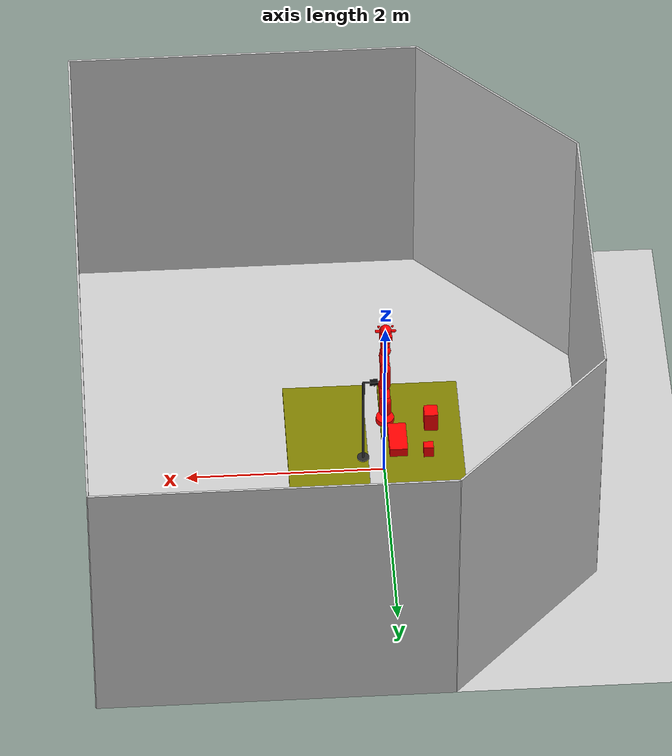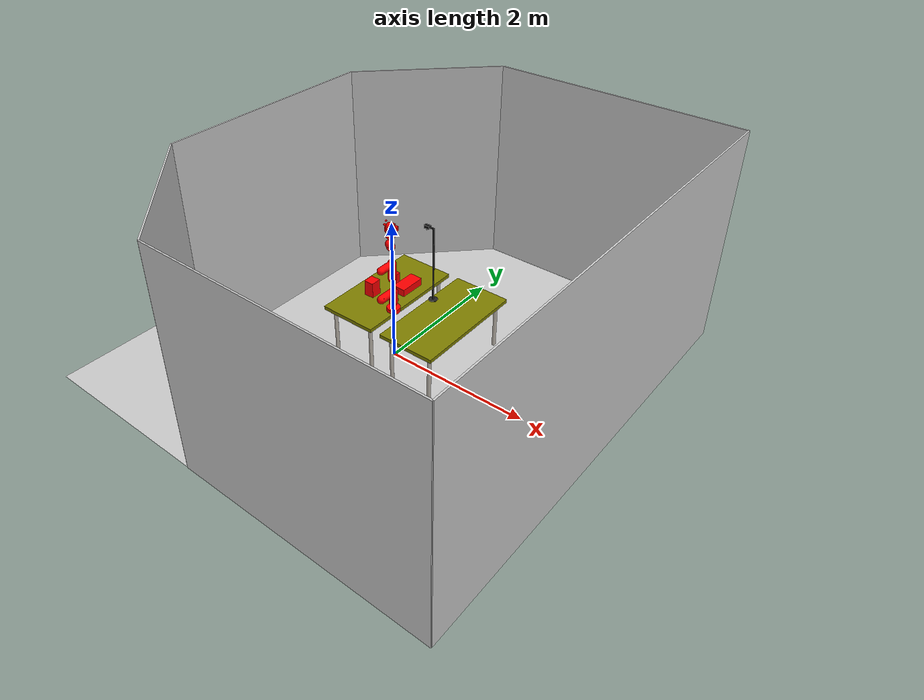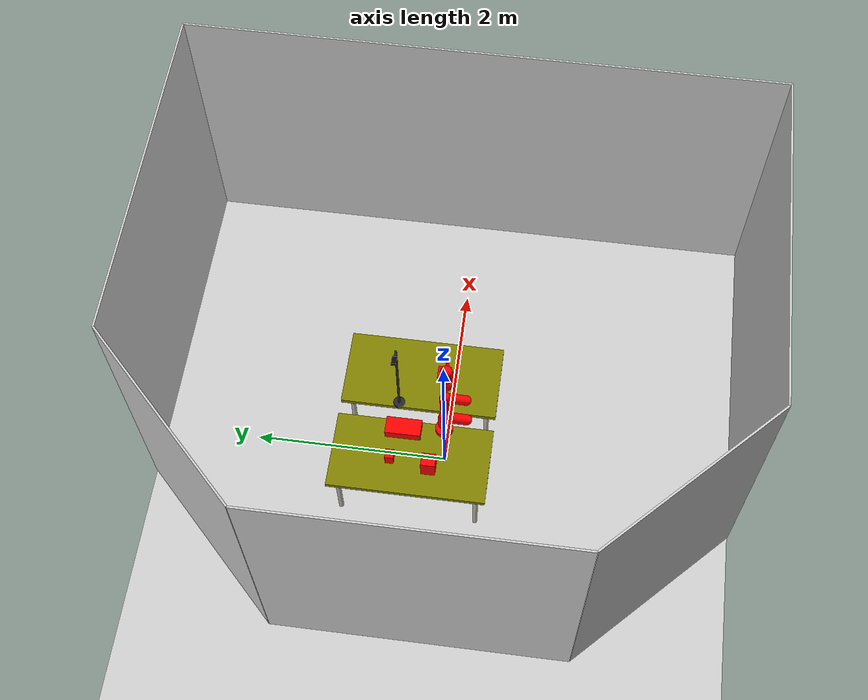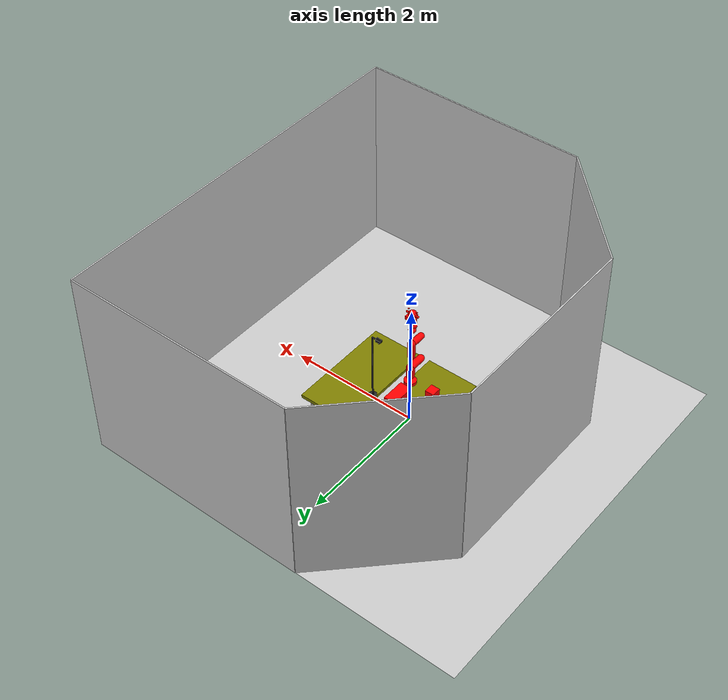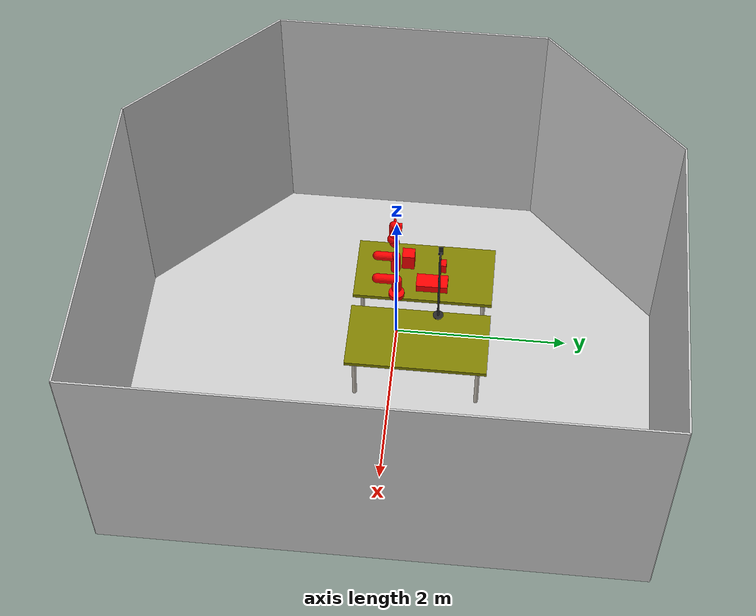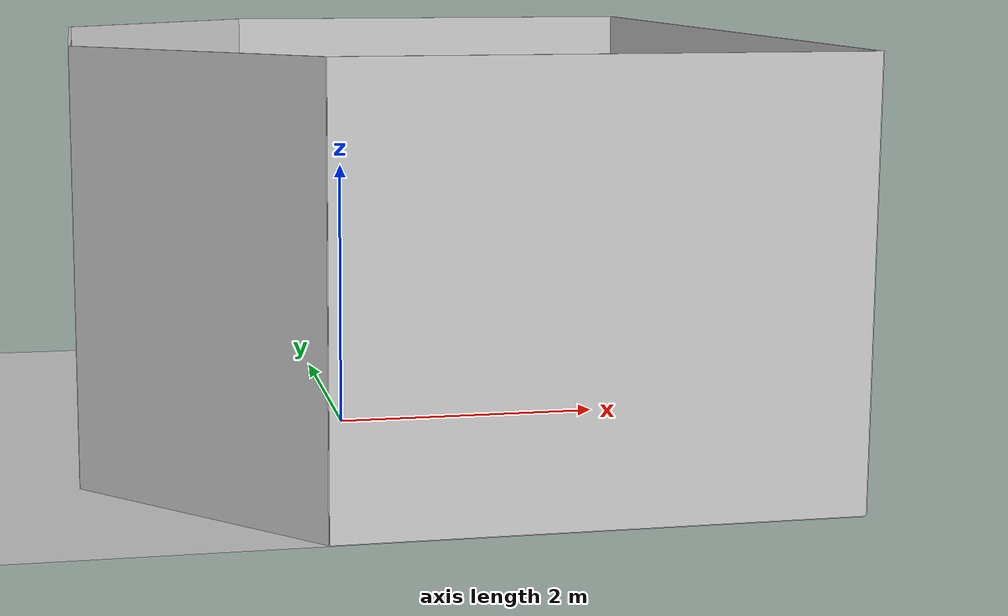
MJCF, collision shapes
<?xml version="1.0" encoding="utf-8"?>
<mujoco model="gen3_scene">
  <compiler angle="radian" autolimits="true"/>

  <default>
    <!-- Contact defaults (stable-ish) -->
    <geom friction="1.0 0.01 0.0001"
          solref="0.02 1"
          solimp="0.9 0.95 0.001"
          margin="0.001"
          condim="4"/>
    <!-- Give hinge joints some damping (arm won't jiggle) -->
    <joint damping="1.0" armature="0.01"/>
  </default>

  <option timestep="0.002"
          gravity="0 0 -9.81"
          integrator="RK4"
          impratio="20"
          density="1.2"
          viscosity="2e-05"
          cone="elliptic"/>

  <size njmax="5000" nconmax="5000"/>

  <visual>
    <global offwidth="1920" offheight="1080" fovy="59"/>
    <map znear="0.001"/>
  </visual>

  <asset>
    <!-- ================= Robosuite arena assets ================= -->
    <texture type="skybox" colorspace="auto" builtin="gradient"
             rgb1="0.9 0.9 1" rgb2="0.2 0.3 0.4" width="256" height="1536"/>
    <texture type="2d" colorspace="sRGB" name="texplane"
             file="textures/light-gray-floor-tile.png"/>
    <texture type="2d" colorspace="sRGB" name="tex-wood"
             file="textures/light_wood.png"/>
    <texture type="cube" colorspace="linear" name="tex-steel-brushed"
             file="textures/steel-brushed.png"/>
    <texture type="2d" colorspace="linear" name="tex-light-gray-plaster"
             file="textures/light-gray-plaster.png"/>
    <texture name="teddy_tex_png" type="2d"
             file="objects/teddy_bear/10607_teddy_bear_SG_v1_diffuse.png"/>
    <texture name="cardboard_tex" type="2d"
             file="objects/Cardboard box/6857659-light-brown-wallpaper.png"/>

    <!-- ================= Robot meshes/materials (INLINED) ================= -->
    <mesh name="base_link" content_type="model/stl" file="robot/base_link.stl"/>
    <mesh name="shoulder_link" content_type="model/stl" file="robot/shoulder_link.stl"/>
    <mesh name="half_arm_1_link" content_type="model/stl" file="robot/half_arm_1_link.stl"/>
    <mesh name="half_arm_2_link" content_type="model/stl" file="robot/half_arm_2_link.stl"/>
    <mesh name="forearm_link" content_type="model/stl" file="robot/forearm_link.stl"/>
    <mesh name="spherical_wrist_1_link" content_type="model/stl" file="robot/spherical_wrist_1_link.stl"/>
    <mesh name="spherical_wrist_2_link" content_type="model/stl" file="robot/spherical_wrist_2_link.stl"/>
    <mesh name="bracelet_no_vision_link" content_type="model/stl" file="robot/bracelet_no_vision_link.stl"/>
    <mesh name="robotiq_base" content_type="model/stl" file="robot/robotiq_base.stl"/>
    <mesh name="left_knuckle" content_type="model/stl" file="robot/left_knuckle.stl"/>
    <mesh name="right_knuckle" content_type="model/stl" file="robot/right_knuckle.stl"/>
    <mesh name="left_finger" content_type="model/stl" file="robot/left_finger.stl"/>
    <mesh name="right_finger" content_type="model/stl" file="robot/right_finger.stl"/>
    <mesh name="left_inner_knuckle" content_type="model/stl" file="robot/left_inner_knuckle.stl"/>
    <mesh name="right_inner_knuckle" content_type="model/stl" file="robot/right_inner_knuckle.stl"/>
    <mesh name="left_finger_tip" content_type="model/stl" file="robot/left_finger_tip.stl"/>
    <mesh name="right_finger_tip" content_type="model/stl" file="robot/right_finger_tip.stl"/>
    <mesh name="bracelet_with_vision_link" content_type="model/stl" file="robot/bracelet_with_vision_link.stl"/>

    <mesh name="teddy_mesh" file="objects/teddy_bear/teddy3.obj" scale="0.01 0.01 0.01"/>
    <mesh name="teddy_mesh_small" file="objects/teddy_bear/teddy3.obj" scale="0.006 0.006 0.006"/>
    <mesh name="cardboard_mesh" file="objects/Cardboard box/Cardboard box.obj" scale="0.15 0.15 0.15"/>

    <!-- Materials -->
    <material name="floorplane" texture="texplane" texuniform="true" texrepeat="2 2"
              specular="0" shininess="0" reflectance="0.01"/>
    <material name="table_wood" texture="tex-wood" texuniform="true" texrepeat="1 1"
              specular="0.35" shininess="0.4" reflectance="0.15"/>
    <material name="table_legs_metal" texture="tex-steel-brushed" shininess="0.8" reflectance="0.8"/>
    <material name="walls_mat" texture="tex-light-gray-plaster" texuniform="true" texrepeat="3 3"
              specular="0.1" shininess="0.1"/>
    <material name="teddy_mat_png" texture="teddy_tex_png" specular="0.05" shininess="0.2"/>
    <material name="cardboard_mat" texture="cardboard_tex" texuniform="true" specular="0.05" shininess="0.2"/>
  </asset>

  <worldbody>
    <!-- Floor -->
    <geom name="floor" size="3 3 0.125" type="plane" group="1" material="floorplane"/>

    <!-- Walls (visual only) -->
    <geom name="wall_leftcorner_visual"  size="1.06 1.5 0.01" pos="-1.25  2.25 1.5"
          quat="0.653281 0.653281 0.270598 0.270598" type="box" contype="0" conaffinity="0"
          group="1" material="walls_mat"/>
    <geom name="wall_rightcorner_visual" size="1.06 1.5 0.01" pos="-1.25 -2.25 1.5"
          quat="0.653281 0.653281 -0.270598 -0.270598" type="box" contype="0" conaffinity="0"
          group="1" material="walls_mat"/>
    <geom name="wall_left_visual"  size="1.75 1.5 0.01" pos=" 1.25  3.0 1.5"
          quat="0.707107 0.707107 0 0" type="box" contype="0" conaffinity="0"
          group="1" material="walls_mat"/>
    <geom name="wall_right_visual" size="1.75 1.5 0.01" pos=" 1.25 -3.0 1.5"
          quat="0.707107 -0.707107 0 0" type="box" contype="0" conaffinity="0"
          group="1" material="walls_mat"/>
    <geom name="wall_rear_visual"  size="1.5 1.5 0.01" pos="-2.0  0.0 1.5"
          quat="0.5 0.5 0.5 0.5" type="box" contype="0" conaffinity="0"
          group="1" material="walls_mat"/>
    <geom name="wall_front_visual" size="3.0 1.5 0.01" pos=" 3.0  0.0 1.5"
          quat="0.5 0.5 -0.5 -0.5" type="box" contype="0" conaffinity="0"
          group="1" material="walls_mat"/>

    <!-- Cameras -->
    <camera name="frontview" pos="1.6 0 1.45" quat="0.560842 0.430646 0.430646 0.560842"/>
    <camera name="birdview"  pos="-0.2 0 3"  quat="0.707107 0 0 0.707107"/>
    <camera name="agentview" pos="0.5 0 1.35" quat="0.653098 0.271041 0.271041 0.653098"/>
    <camera name="sideview"  pos="-0.0565177 1.27612 1.48796" quat="0.00990507 0.00687796 0.591223 0.806418"/>
    <camera name="wrist_rgb" mode="fixed" pos="0 0 0" quat="1 0 0 0" fovy="60"/>

    <camera name="fixed_down"
        mode="fixed"
        pos="0.10 0.50 1.7868"
        quat="0.6830127 0.1830127 0.1830127 0.6830127"
        fovy="60"/>

    <!-- ================= Fixed camera rig marker (Γ-shape) ================= -->
    <!-- This is VISUAL ONLY (no collisions), just to show the stand / camera body -->
    <body name="fixed_cam_rig" pos="0.20 0.50 0.72">
      <!-- Base plate sitting on table -->
      <geom name="fixed_cam_baseplate" type="cylinder"
            size="0.06 0.01"
            pos="0.05 0 0"
            rgba="0.15 0.15 0.15 1"
            contype="0" conaffinity="0" group="1"/>

      <!-- Vertical pole: from table top (z=0.72) up to camera height (z=1.7868) -->
      <!-- height = 1.0668 -->
      <geom name="fixed_cam_pole" type="capsule"
            fromto="0.05 0 0   0.05 0 1.0668"
            size="0.012"
            rgba="0.2 0.2 0.2 1"
            contype="0" conaffinity="0" group="1"/>

      <!-- Horizontal arm at the top: 5cm toward robot table (negative X) -->
      <geom name="fixed_cam_arm" type="capsule"
            fromto="0.05 0 1.0668   -0.05 0 1.0668"
            size="0.010"
            rgba="0.2 0.2 0.2 1"
            contype="0" conaffinity="0" group="1"/>

      <!-- Small camera box at the arm end, aligned with fixed_down camera position -->
      <geom name="fixed_cam_box" type="box"
            pos="-0.05 0 1.0668"
            size="0.04 0.025 0.02"
            rgba="0.05 0.05 0.05 1"
            contype="0" conaffinity="0" group="1"/>

      <!-- “Lens” pointing down -->
      <geom name="fixed_cam_lens" type="cylinder"
            pos="-0.05 0 1.0368"
            quat="0.9659 0 0.2588 0"
            size="0.01 0.02"
            rgba="0.12 0.12 0.12 1"
            contype="0" conaffinity="0" group="1"/>
    </body>

    <!-- Light -->
    <light pos="1 1 1.5" dir="-0.19245 -0.19245 -0.96225" type="directional" castshadow="false"/>

    <!-- Tables -->
    <!-- Left table right edge is at x=0.0 (robot base at edge) -->
    <body name="arena_table_left" pos="-0.35 0.3 0.695">
      <!-- top (collision) -->
      <geom name="table_left_collision" size="0.4 0.8 0.025" type="box"
            contype="1" conaffinity="1" rgba="0.5 0.5 0 1"/>
      <!-- top (visual) -->
      <geom name="table_left_visual" size="0.4 0.8 0.025" type="box"
            contype="0" conaffinity="0" group="1" material="table_wood"/>

      <!-- legs (visual only) -->
      <geom name="table_left_leg1_visual" size="0.025 0.3875" pos=" 0.3  0.7 -0.3875" type="cylinder"
            contype="0" conaffinity="0" group="1" material="table_legs_metal"/>
      <geom name="table_left_leg2_visual" size="0.025 0.3875" pos="-0.3  0.7 -0.3875" type="cylinder"
            contype="0" conaffinity="0" group="1" material="table_legs_metal"/>
      <geom name="table_left_leg3_visual" size="0.025 0.3875" pos="-0.3 -0.7 -0.3875" type="cylinder"
            contype="0" conaffinity="0" group="1" material="table_legs_metal"/>
      <geom name="table_left_leg4_visual" size="0.025 0.3875" pos=" 0.3 -0.7 -0.3875" type="cylinder"
            contype="0" conaffinity="0" group="1" material="table_legs_metal"/>
    </body>

    <!-- Right table left edge is at x=0.05 (5cm gap from left table) -->
    <body name="arena_table_right" pos="0.6 0.3 0.695">
      <!-- top (collision) -->
      <geom name="table_right_collision" size="0.4 0.8 0.025" type="box"
            contype="1" conaffinity="1" rgba="0.5 0.5 0 1"/>
      <!-- top (visual) -->
      <geom name="table_right_visual" size="0.4 0.8 0.025" type="box"
            contype="0" conaffinity="0" group="1" material="table_wood"/>

      <!-- legs (visual only) -->
      <geom name="table_right_leg1_visual" size="0.025 0.3875" pos=" 0.3  0.7 -0.3875" type="cylinder"
            contype="0" conaffinity="0" group="1" material="table_legs_metal"/>
      <geom name="table_right_leg2_visual" size="0.025 0.3875" pos="-0.3  0.7 -0.3875" type="cylinder"
            contype="0" conaffinity="0" group="1" material="table_legs_metal"/>
      <geom name="table_right_leg3_visual" size="0.025 0.3875" pos="-0.3 -0.7 -0.3875" type="cylinder"
            contype="0" conaffinity="0" group="1" material="table_legs_metal"/>
      <geom name="table_right_leg4_visual" size="0.025 0.3875" pos=" 0.3 -0.7 -0.3875" type="cylinder"
            contype="0" conaffinity="0" group="1" material="table_legs_metal"/>
    </body>

    <!-- Objects (free bodies) -->
    <body name="big_bear" pos="-0.45 0.10 0.71">
      <freejoint/>
      <!-- visual -->
      <geom type="mesh" mesh="teddy_mesh" material="teddy_mat_png" contype="0" conaffinity="0"/>
      <!-- stable collision proxy: box -->
      <geom name="big_bear_col" type="box"
            pos="0 0 0.12"
            size="0.0675 0.072 0.108"
            rgba="1 0 0 0"
            contype="1" conaffinity="1"
            density="10"/>
      <geom name="big_bear_col_viz" type="box"
            pos="0 0 0.12"
            size="0.0675 0.072 0.108"
            rgba="1 0 0 0.25"
            contype="0" conaffinity="0"
            group="1"/>
    </body>

    <body name="small_bear" pos="-0.40 0.50 0.71">
      <freejoint/>
      <geom type="mesh" mesh="teddy_mesh_small" material="teddy_mat_png" contype="0" conaffinity="0"/>
      <geom name="small_bear_col" type="box"
            pos="0 0 0.09"
            size="0.0486 0.0432 0.0648"
            rgba="1 0 0 0"
            contype="1" conaffinity="1"
            density="10"/>
      <geom name="small_bear_col_viz" type="box"
            pos="0 0 0.09"
            size="0.0486 0.0432 0.0648"
            rgba="1 0 0 0.25"
            contype="0" conaffinity="0"
            group="1"/>
    </body>

    <body name="cardboard_box" pos="-0.1 0.40 0.85" euler="0 1.5708 1.5708">
      <freejoint/>

      <!-- visual only -->
      <geom type="mesh" mesh="cardboard_mesh" material="cardboard_mat"
            contype="0" conaffinity="0"/>

      <!-- collision proxy (simple, stable) -->
      <geom name="cardboard_col" type="box"
            pos="0 0 0.00"
            size="0.18 0.05 0.09"
            contype="1" conaffinity="1"
            density="5"
            rgba="1 0 0 0"/>
      <!-- DEBUG: visualize collision box (no contact) -->
      <geom name="cardboard_col_viz" type="box"
            pos="0 0 0.00"
            size="0.18 0.05 0.09"
            rgba="0 1 0 0.25"
            contype="0" conaffinity="0"
            group="1"/>
    </body>

    <!-- ================= Robot (add collision proxies + keep visuals) ================= -->
    <body name="gen3_mount" pos="0 0 0.72" gravcomp="1">
      <!-- base visual -->
      <geom type="mesh" mesh="base_link" contype="0" conaffinity="0"/>
      <!-- base collision proxy (doesn't need to collide much, but fine) -->
      <geom name="base_col" type="cylinder" pos="0 0 0.02" size="0.09 0.03"
            rgba="1 0 0 0" contype="1" conaffinity="1"/>

      <body name="gen3_shoulder_link" pos="0 0 0.15643" quat="-3.67321e-06 1 0 0">
        <inertial pos="-2.3e-05 -0.010364 -0.07336" quat="0.707051 0.0451246 -0.0453544 0.704263"
                  mass="1.3773" diaginertia="0.00488868 0.00457 0.00135132"/>
        <joint name="gen3_joint_1" pos="0 0 0" axis="0 0 1" actuatorfrcrange="-80 80"/>
        <geom type="mesh" rgba="0.75294 0.75294 0.75294 1" mesh="shoulder_link" contype="0" conaffinity="0"/>
        <!-- collision proxy -->
        <geom name="shoulder_col" type="capsule" fromto="0 0 0.02  0 0 -0.12" size="0.06"
              rgba="1 0 0 0" contype="1" conaffinity="1"/>

        <body name="gen3_half_arm_1_link" pos="0 0.005375 -0.12838" quat="0.707105 0.707108 0 0">
          <inertial pos="-4.4e-05 -0.09958 -0.013278" quat="0.482348 0.516286 -0.516862 0.483366"
                    mass="1.1636" diaginertia="0.0113017 0.011088 0.00102532"/>
          <joint name="gen3_joint_2" pos="0 0 0" axis="0 0 1" range="-2.41 2.41" actuatorfrcrange="-80 80"/>
          <geom type="mesh" rgba="0.75294 0.75294 0.75294 1" mesh="half_arm_1_link" contype="0" conaffinity="0"/>
          <geom name="upperarm_col" type="capsule" fromto="0 0 0   0 0 -0.22" size="0.055"
                rgba="1 0 0 0" contype="1" conaffinity="1"/>

          <body name="gen3_half_arm_2_link" pos="0 -0.21038 -0.006375" quat="0.707105 -0.707108 0 0">
            <inertial pos="-4.4e-05 -0.006641 -0.117892" quat="0.706144 0.0213722 -0.0209128 0.707437"
                      mass="1.1636" diaginertia="0.0111633 0.010932 0.00100671"/>
            <joint name="gen3_joint_3" pos="0 0 0" axis="0 0 1" actuatorfrcrange="-80 80"/>
            <geom type="mesh" rgba="0.75294 0.75294 0.75294 1" mesh="half_arm_2_link" contype="0" conaffinity="0"/>
            <geom name="upperarm2_col" type="capsule" fromto="0 0 0   0 0 -0.22" size="0.055"
                  rgba="1 0 0 0" contype="1" conaffinity="1"/>

            <body name="gen3_forearm_link" pos="0 0.006375 -0.21038" quat="0.707105 0.707108 0 0">
              <inertial pos="-1.8e-05 -0.075478 -0.015006" quat="0.483678 0.515961 -0.515859 0.483455"
                        mass="0.9302" diaginertia="0.00834839 0.008147 0.000598606"/>
              <joint name="gen3_joint_4" pos="0 0 0" axis="0 0 1" range="-2.66 2.66" actuatorfrcrange="-80 80"/>
              <geom type="mesh" rgba="0.75294 0.75294 0.75294 1" mesh="forearm_link" contype="0" conaffinity="0"/>
              <geom name="forearm_col" type="capsule" fromto="0 0 0   0 0 -0.20" size="0.05"
                    rgba="1 0 0 0" contype="1" conaffinity="1"/>

              <body name="gen3_spherical_wrist_1_link" pos="0 -0.20843 -0.006375" quat="0.707105 -0.707108 0 0">
                <inertial pos="1e-06 -0.009432 -0.063883" quat="0.703558 0.0707492 -0.0707492 0.703558"
                          mass="0.6781" diaginertia="0.00165901 0.001596 0.000346988"/>
                <joint name="gen3_joint_5" pos="0 0 0" axis="0 0 1" actuatorfrcrange="-20 20"/>
                <geom type="mesh" rgba="0.75294 0.75294 0.75294 1" mesh="spherical_wrist_1_link" contype="0" conaffinity="0"/>
                <geom name="wrist1_col" type="sphere" pos="0 0 -0.05" size="0.055"
                      rgba="1 0 0 0" contype="1" conaffinity="1"/>

                <body name="gen3_spherical_wrist_2_link" pos="0 0.00017505 -0.10593" quat="0.707105 0.707108 0 0">
                  <inertial pos="1e-06 -0.045483 -0.00965" quat="0.44426 0.550121 -0.550121 0.44426"
                            mass="0.6781" diaginertia="0.00170087 0.001641 0.00035013"/>
                  <joint name="gen3_joint_6" pos="0 0 0" axis="0 0 1" range="-2.23 2.23" actuatorfrcrange="-20 20"/>
                  <geom type="mesh" rgba="0.75294 0.75294 0.75294 1" mesh="spherical_wrist_2_link" contype="0" conaffinity="0"/>
                  <geom name="wrist2_col" type="sphere" pos="0 0 -0.03" size="0.05"
                        rgba="1 0 0 0" contype="1" conaffinity="1"/>

                  <body name="gen3_bracelet_link" pos="0 -0.10593 -0.00017505" quat="0.707105 -0.707108 0 0">
                    <inertial pos="0.000967136 0.00592216 -0.0302303" quat="0.707949 0.693027 -0.101455 0.0907149"
                              mass="1.5992" diaginertia="0.00562397 0.00533749 0.00190074"/>
                    <joint name="gen3_joint_7" pos="0 0 0" axis="0 0 1" actuatorfrcrange="-20 20"/>
                    <geom type="mesh" rgba="0.75294 0.75294 0.75294 1" mesh="bracelet_no_vision_link" contype="0" conaffinity="0"/>
                    <geom type="mesh" mesh="bracelet_with_vision_link" contype="0" conaffinity="0"/>

                    <!-- bracelet collision proxy -->
                    <geom name="bracelet_col" type="capsule" fromto="0 0 0   0 0 -0.12" size="0.06"
                          rgba="1 0 0 0" contype="1" conaffinity="1"/>

                    <!-- robotiq base visual -->
                    <geom pos="0 0 -0.061525" quat="0 1 0 0" type="mesh" mesh="robotiq_base" contype="0" conaffinity="0"/>
                    <!-- robotiq base collision -->
                    <geom name="robotiq_base_col" type="box" pos="0 -0.02 -0.08" size="0.06 0.06 0.03"
                          rgba="1 0 0 0" contype="1" conaffinity="1"/>

                    <!-- Existing gripper geoms (you can keep visuals) -->
                    <body name="gen3_robotiq_85_left_knuckle_link" pos="0.0306011 0 -0.11643" quat="0 1 0 0">
                      <inertial pos="0.0280921 -0.000550523 0.00570126" quat="0.699112 0.212074 0.213677 0.648544"
                                mass="0.0564515" diaginertia="1.95637e-05 1.76663e-05 9.3792e-06"/>
                      <joint name="gen3_robotiq_85_left_knuckle_joint" pos="0 0 0" axis="0 -1 0" range="0 0.8" actuatorfrcrange="-50 50"/>
                      <geom type="mesh" mesh="left_knuckle" contype="0" conaffinity="0"/>
                      <geom pos="0.0315262 0 -0.00376347" type="mesh" mesh="left_finger" contype="0" conaffinity="0"/>
                      <!-- knuckle collision -->
                      <geom name="left_knuckle_col" type="capsule" fromto="0.02 0 0   0.06 0 0" size="0.015"
                            rgba="1 0 0 0" contype="1" conaffinity="1"/>

                      <body name="gen3_robotiq_85_left_finger_tip_link" pos="0.0371575 0 0.0434217">
                        <inertial pos="-0.0145671 -0.0008 0.016497" quat="0.977773 0 -0.209665 0"
                                  mass="0.0426859" diaginertia="1.20653e-05 1.19789e-05 2.64405e-06"/>
                        <joint name="gen3_robotiq_85_left_finger_tip_joint" pos="0 0 0" axis="0 -1 0"/>
                        <geom type="mesh" mesh="left_finger_tip" contype="0" conaffinity="0"/>
                        <geom name="left_fingertip_col" type="sphere" pos="0 0 0.02" size="0.012"
                              rgba="1 0 0 0" contype="1" conaffinity="1"/>
                      </body>
                    </body>

                    <body name="gen3_robotiq_85_right_knuckle_link" pos="-0.0306011 0 -0.11643" quat="0 1 0 0">
                      <inertial pos="-0.0280921 4.48872e-05 0.00570126" quat="0.669099 -0.212862 -0.212522 0.679581"
                                mass="0.0564515" diaginertia="1.95514e-05 1.7665e-05 9.37296e-06"/>
                      <joint name="gen3_robotiq_85_right_knuckle_joint" pos="0 0 0" axis="0 -1 0" range="-0.8 0" actuatorfrcrange="-50 50"/>
                      <geom type="mesh" mesh="right_knuckle" contype="0" conaffinity="0"/>
                      <geom pos="-0.0315262 0 -0.00376347" type="mesh" mesh="right_finger" contype="0" conaffinity="0"/>
                      <geom name="right_knuckle_col" type="capsule" fromto="-0.02 0 0   -0.06 0 0" size="0.015"
                            rgba="1 0 0 0" contype="1" conaffinity="1"/>

                      <body name="gen3_robotiq_85_right_finger_tip_link" pos="-0.0371575 0 0.0434217">
                        <inertial pos="0.0145671 5e-05 0.016497" quat="0.977773 0 0.209665 0"
                                  mass="0.0426859" diaginertia="1.20653e-05 1.19789e-05 2.64405e-06"/>
                        <joint name="gen3_robotiq_85_right_finger_tip_joint" pos="0 0 0" axis="0 -1 0"/>
                        <geom type="mesh" mesh="right_finger_tip" contype="0" conaffinity="0"/>
                        <geom name="right_fingertip_col" type="sphere" pos="0 0 0.02" size="0.012"
                              rgba="1 0 0 0" contype="1" conaffinity="1"/>
                      </body>
                    </body>

                    <body name="gen3_robotiq_85_left_inner_knuckle_link" pos="0.0127 0 -0.122945" quat="0 1 0 0">
                      <inertial pos="0.018977 0.00015001 0.022471" quat="0.939613 0 0.342237 0"
                                mass="0.0296938" diaginertia="1.28757e-05 8.69056e-06 4.88712e-06"/>
                      <joint name="gen3_robotiq_85_left_inner_knuckle_joint" pos="0 0 0" axis="0 -1 0"/>
                      <geom type="mesh" mesh="left_inner_knuckle" contype="0" conaffinity="0"/>
                      <geom type="sphere" size="0.012" pos="0 0 0.02" rgba="1 0 0 0" contype="1" conaffinity="1"/>
                    </body>

                    <body name="gen3_robotiq_85_right_inner_knuckle_link" pos="-0.0127 0 -0.122945" quat="0 1 0 0">
                      <inertial pos="-0.0192682 5.001e-05 0.0222218" quat="0.936371 0 -0.351012 0"
                                mass="0.0296938" diaginertia="1.2882e-05 8.69056e-06 4.88076e-06"/>
                      <joint name="gen3_robotiq_85_right_inner_knuckle_joint" pos="0 0 0" axis="0 -1 0"/>
                      <geom type="mesh" mesh="right_inner_knuckle" contype="0" conaffinity="0"/>
                      <geom type="sphere" size="0.012" pos="0 0 0.02" rgba="1 0 0 0" contype="1" conaffinity="1"/>
                    </body>

                  </body>
                </body>
              </body>
            </body>
          </body>
        </body>
      </body>
    </body>
  </worldbody>

  <!-- ================= joint position actuators to HOLD against gravity ================= -->
  <actuator>
    <position name="act_j1" joint="gen3_joint_1" kp="3000" kv="200" forcerange="-300 300"/>
    <position name="act_j2" joint="gen3_joint_2" kp="3000" kv="200" forcerange="-300 300"/>
    <position name="act_j3" joint="gen3_joint_3" kp="2500" kv="180" forcerange="-250 250"/>
    <position name="act_j4" joint="gen3_joint_4" kp="4000" kv="250" forcerange="-400 400"/>
    <position name="act_j5" joint="gen3_joint_5" kp="1200" kv="120" forcerange="-120 120"/>
    <position name="act_j6" joint="gen3_joint_6" kp="1200" kv="120" forcerange="-120 120"/>
    <position name="act_j7" joint="gen3_joint_7" kp="1000" kv="100" forcerange="-100 100"/>
  </actuator>

</mujoco>
